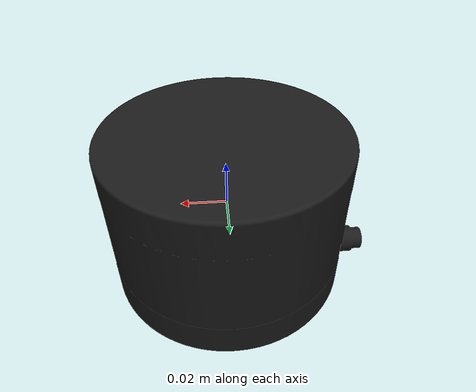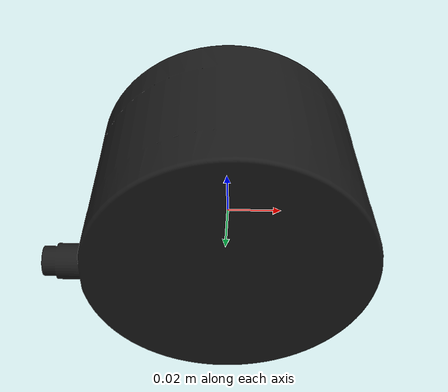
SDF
<?xml version="1.0" ?>
<sdf version="1.8">
  <model name="3d_lidar">
    <pose>0 0 0 0 0 0</pose>

    <link name="base_link">
      <inertial>
        <mass>0.35</mass>
        <inertia>
          <ixx>0.0001</ixx>
          <ixy>0</ixy>
          <ixz>0</ixz>
          <iyy>0.0001</iyy>
          <iyz>0</iyz>
          <izz>0.0001</izz>
        </inertia>
        <pose>0 0 0 0 0 0</pose>
      </inertial>

      <collision name="collision">
        <geometry>
          <cylinder>
            <radius>0.05</radius>
            <length>0.07</length>
          </cylinder>
        </geometry>
      </collision>

      <visual name="visual">
        <geometry>
          <mesh>
            <uri>model://lidar/meshes/lidar.dae</uri>
            <scale>1 1 1</scale>
          </mesh>
        </geometry>
        <material>
          <ambient>0.1 0.1 0.1 1.0</ambient>
          <diffuse>0.1 0.1 0.1 1.0</diffuse>
          <specular>0.01 0.01 0.01 1.0</specular>
        </material>
      </visual>

      <!-- 3D LiDAR sensor -->
      <sensor name="3d_lidar_sensor" type="gpu_lidar">
        <pose>0 0 0 0 0 0</pose>
        <topic>lidar</topic>
        <update_rate>10</update_rate>
        <lidar>
          <scan>
            <horizontal>
              <samples>1800</samples>
              <resolution>1</resolution>
              <min_angle>-3.14159</min_angle>
              <max_angle>3.14159</max_angle>
            </horizontal>
            <vertical>
              <samples>16</samples>
              <resolution>1</resolution>
              <min_angle>-0.261799</min_angle>
              <max_angle>0.261799</max_angle>
            </vertical>
          </scan>
          <range>
            <min>0.1</min>
            <max>100.0</max>
            <resolution>0.01</resolution>
          </range>
          <noise>
            <type>gaussian</type>
            <mean>0.0</mean>
            <stddev>0.01</stddev>
          </noise>
        </lidar>
        <visualize>true</visualize>
        <always_on>true</always_on>
      </sensor>
    </link>

    <!-- ROS2 bridge plugin -->
    <plugin
      filename="ignition-gazebo-ros-gpu-lidar-system"
      name="ignition::gazebo::systems::RosGpuLidar">
      <namespace>sensors</namespace>
      <topic>lidar</topic>
      <frame_id>lidar_link</frame_id>
    </plugin>
  </model>
</sdf>
